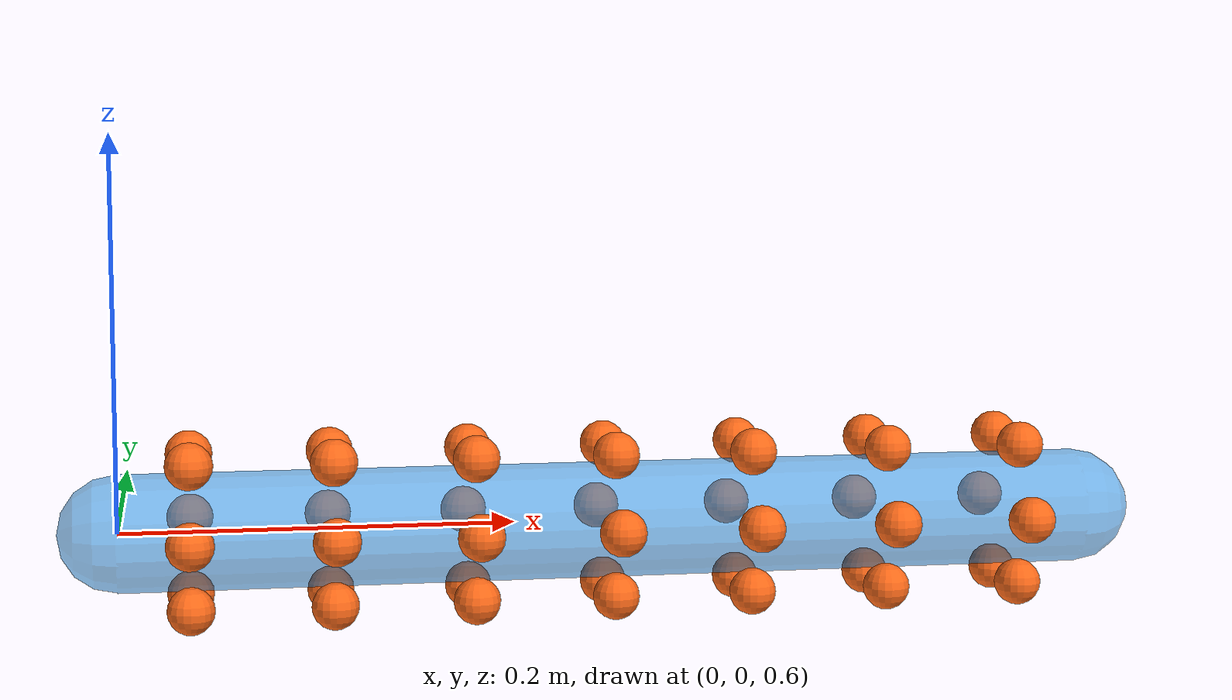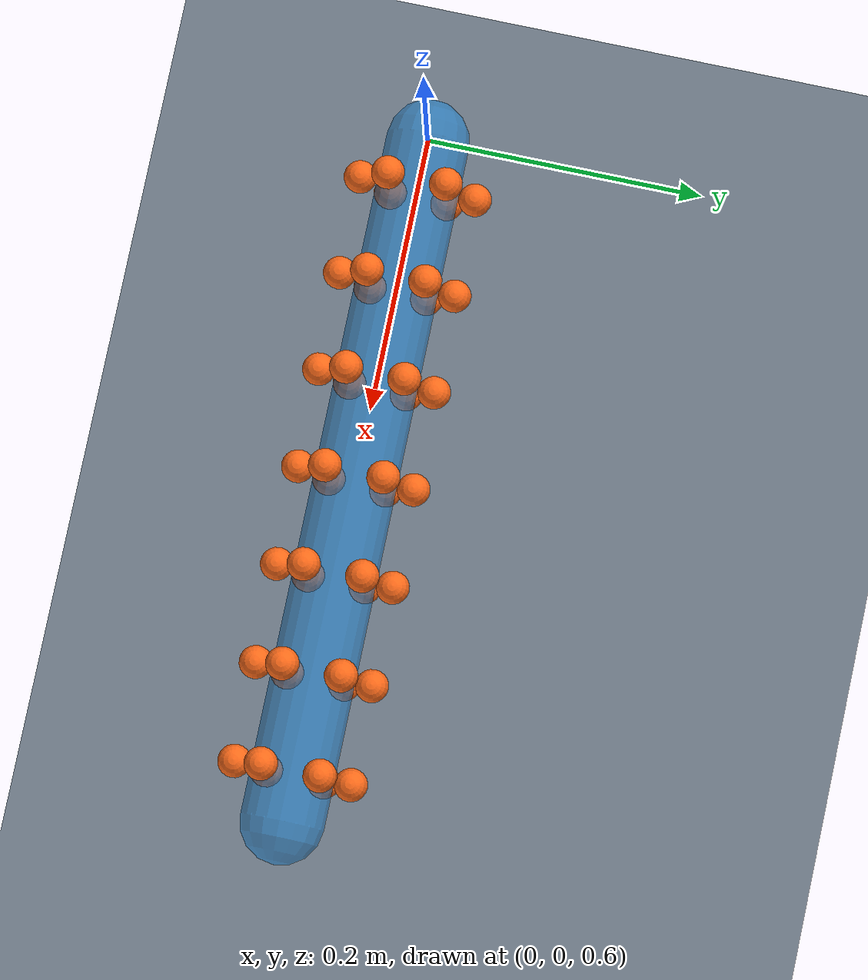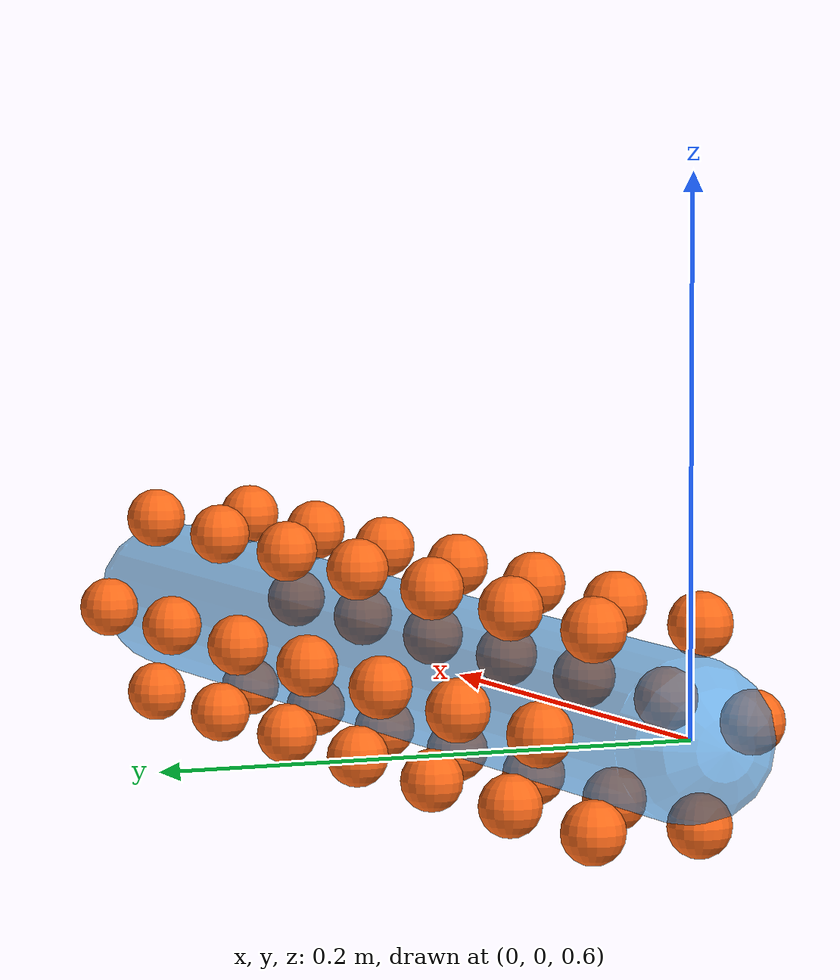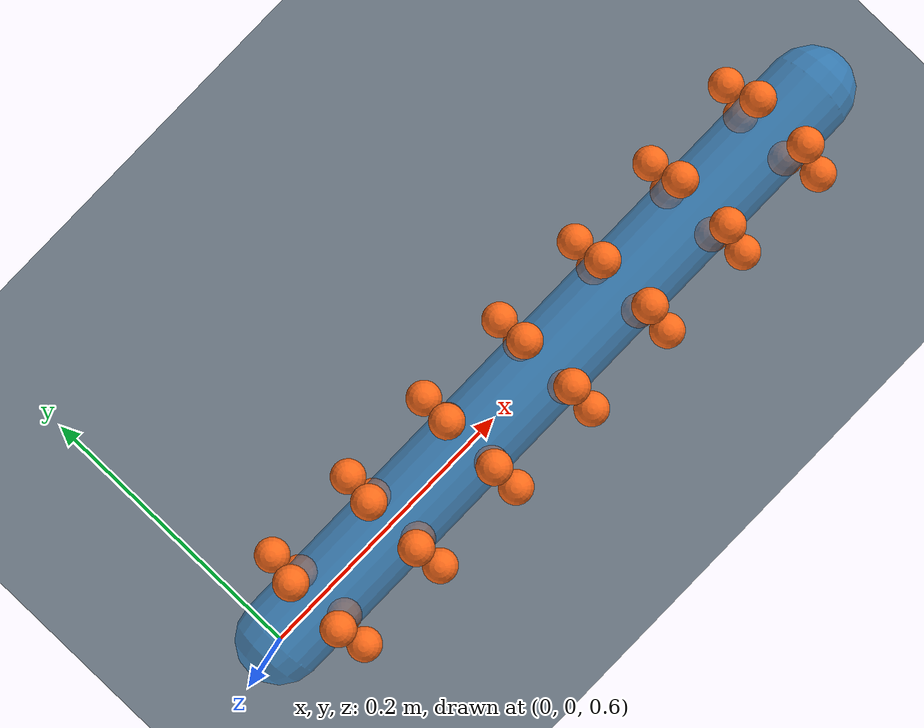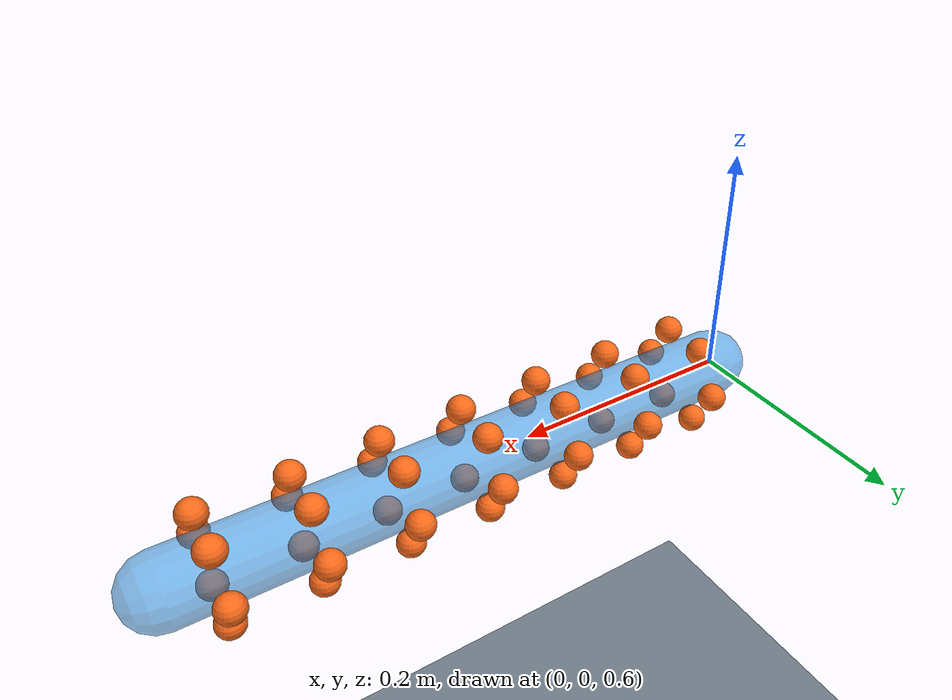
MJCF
<?xml version="1.0" encoding="UTF-8"?>
<mujoco model="beam_soft_mvp">
  <option timestep="0.004" gravity="0 0 -9.81"/>
  <visual><global elevation="-15" azimuth="130" offwidth="720" offheight="720"/></visual>
  <worldbody>
    <geom name="floor" type="plane" size="2 2 0.1" pos="0 0 0" rgba="0.45 0.50 0.55 1" friction="0.8"/>
    <body name="beam" pos="0 0 0.6">
      <freejoint/>
      <geom name="core" type="capsule" fromto="0 0 0 0.5 0 0" size="0.03" rgba="0.10 0.55 0.90 0.55" />
      <geom name="cloud_00" type="sphere" pos="0.0357143 0.042 0" size="0.012" rgba="1.00 0.42 0.10 0.9" friction="0.3" condim="1"/>
      <geom name="cloud_01" type="sphere" pos="0.0357143 0.021 0.0363731" size="0.012" rgba="1.00 0.42 0.10 0.9" friction="0.3" condim="1"/>
      <geom name="cloud_02" type="sphere" pos="0.0357143 -0.021 0.0363731" size="0.012" rgba="1.00 0.42 0.10 0.9" friction="0.3" condim="1"/>
      <geom name="cloud_03" type="sphere" pos="0.0357143 -0.042 5.14352e-18" size="0.012" rgba="1.00 0.42 0.10 0.9" friction="0.3" condim="1"/>
      <geom name="cloud_04" type="sphere" pos="0.0357143 -0.021 -0.0363731" size="0.012" rgba="1.00 0.42 0.10 0.9" friction="0.3" condim="1"/>
      <geom name="cloud_05" type="sphere" pos="0.0357143 0.021 -0.0363731" size="0.012" rgba="1.00 0.42 0.10 0.9" friction="0.3" condim="1"/>
      <geom name="cloud_06" type="sphere" pos="0.107143 0.042 0" size="0.012" rgba="1.00 0.42 0.10 0.9" friction="0.3" condim="1"/>
      <geom name="cloud_07" type="sphere" pos="0.107143 0.021 0.0363731" size="0.012" rgba="1.00 0.42 0.10 0.9" friction="0.3" condim="1"/>
      <geom name="cloud_08" type="sphere" pos="0.107143 -0.021 0.0363731" size="0.012" rgba="1.00 0.42 0.10 0.9" friction="0.3" condim="1"/>
      <geom name="cloud_09" type="sphere" pos="0.107143 -0.042 5.14352e-18" size="0.012" rgba="1.00 0.42 0.10 0.9" friction="0.3" condim="1"/>
      <geom name="cloud_10" type="sphere" pos="0.107143 -0.021 -0.0363731" size="0.012" rgba="1.00 0.42 0.10 0.9" friction="0.3" condim="1"/>
      <geom name="cloud_11" type="sphere" pos="0.107143 0.021 -0.0363731" size="0.012" rgba="1.00 0.42 0.10 0.9" friction="0.3" condim="1"/>
      <geom name="cloud_12" type="sphere" pos="0.178571 0.042 0" size="0.012" rgba="1.00 0.42 0.10 0.9" friction="0.3" condim="1"/>
      <geom name="cloud_13" type="sphere" pos="0.178571 0.021 0.0363731" size="0.012" rgba="1.00 0.42 0.10 0.9" friction="0.3" condim="1"/>
      <geom name="cloud_14" type="sphere" pos="0.178571 -0.021 0.0363731" size="0.012" rgba="1.00 0.42 0.10 0.9" friction="0.3" condim="1"/>
      <geom name="cloud_15" type="sphere" pos="0.178571 -0.042 5.14352e-18" size="0.012" rgba="1.00 0.42 0.10 0.9" friction="0.3" condim="1"/>
      <geom name="cloud_16" type="sphere" pos="0.178571 -0.021 -0.0363731" size="0.012" rgba="1.00 0.42 0.10 0.9" friction="0.3" condim="1"/>
      <geom name="cloud_17" type="sphere" pos="0.178571 0.021 -0.0363731" size="0.012" rgba="1.00 0.42 0.10 0.9" friction="0.3" condim="1"/>
      <geom name="cloud_18" type="sphere" pos="0.25 0.042 0" size="0.012" rgba="1.00 0.42 0.10 0.9" friction="0.3" condim="1"/>
      <geom name="cloud_19" type="sphere" pos="0.25 0.021 0.0363731" size="0.012" rgba="1.00 0.42 0.10 0.9" friction="0.3" condim="1"/>
      <geom name="cloud_20" type="sphere" pos="0.25 -0.021 0.0363731" size="0.012" rgba="1.00 0.42 0.10 0.9" friction="0.3" condim="1"/>
      <geom name="cloud_21" type="sphere" pos="0.25 -0.042 5.14352e-18" size="0.012" rgba="1.00 0.42 0.10 0.9" friction="0.3" condim="1"/>
      <geom name="cloud_22" type="sphere" pos="0.25 -0.021 -0.0363731" size="0.012" rgba="1.00 0.42 0.10 0.9" friction="0.3" condim="1"/>
      <geom name="cloud_23" type="sphere" pos="0.25 0.021 -0.0363731" size="0.012" rgba="1.00 0.42 0.10 0.9" friction="0.3" condim="1"/>
      <geom name="cloud_24" type="sphere" pos="0.321429 0.042 0" size="0.012" rgba="1.00 0.42 0.10 0.9" friction="0.3" condim="1"/>
      <geom name="cloud_25" type="sphere" pos="0.321429 0.021 0.0363731" size="0.012" rgba="1.00 0.42 0.10 0.9" friction="0.3" condim="1"/>
      <geom name="cloud_26" type="sphere" pos="0.321429 -0.021 0.0363731" size="0.012" rgba="1.00 0.42 0.10 0.9" friction="0.3" condim="1"/>
      <geom name="cloud_27" type="sphere" pos="0.321429 -0.042 5.14352e-18" size="0.012" rgba="1.00 0.42 0.10 0.9" friction="0.3" condim="1"/>
      <geom name="cloud_28" type="sphere" pos="0.321429 -0.021 -0.0363731" size="0.012" rgba="1.00 0.42 0.10 0.9" friction="0.3" condim="1"/>
      <geom name="cloud_29" type="sphere" pos="0.321429 0.021 -0.0363731" size="0.012" rgba="1.00 0.42 0.10 0.9" friction="0.3" condim="1"/>
      <geom name="cloud_30" type="sphere" pos="0.392857 0.042 0" size="0.012" rgba="1.00 0.42 0.10 0.9" friction="0.3" condim="1"/>
      <geom name="cloud_31" type="sphere" pos="0.392857 0.021 0.0363731" size="0.012" rgba="1.00 0.42 0.10 0.9" friction="0.3" condim="1"/>
      <geom name="cloud_32" type="sphere" pos="0.392857 -0.021 0.0363731" size="0.012" rgba="1.00 0.42 0.10 0.9" friction="0.3" condim="1"/>
      <geom name="cloud_33" type="sphere" pos="0.392857 -0.042 5.14352e-18" size="0.012" rgba="1.00 0.42 0.10 0.9" friction="0.3" condim="1"/>
      <geom name="cloud_34" type="sphere" pos="0.392857 -0.021 -0.0363731" size="0.012" rgba="1.00 0.42 0.10 0.9" friction="0.3" condim="1"/>
      <geom name="cloud_35" type="sphere" pos="0.392857 0.021 -0.0363731" size="0.012" rgba="1.00 0.42 0.10 0.9" friction="0.3" condim="1"/>
      <geom name="cloud_36" type="sphere" pos="0.464286 0.042 0" size="0.012" rgba="1.00 0.42 0.10 0.9" friction="0.3" condim="1"/>
      <geom name="cloud_37" type="sphere" pos="0.464286 0.021 0.0363731" size="0.012" rgba="1.00 0.42 0.10 0.9" friction="0.3" condim="1"/>
      <geom name="cloud_38" type="sphere" pos="0.464286 -0.021 0.0363731" size="0.012" rgba="1.00 0.42 0.10 0.9" friction="0.3" condim="1"/>
      <geom name="cloud_39" type="sphere" pos="0.464286 -0.042 5.14352e-18" size="0.012" rgba="1.00 0.42 0.10 0.9" friction="0.3" condim="1"/>
      <geom name="cloud_40" type="sphere" pos="0.464286 -0.021 -0.0363731" size="0.012" rgba="1.00 0.42 0.10 0.9" friction="0.3" condim="1"/>
      <geom name="cloud_41" type="sphere" pos="0.464286 0.021 -0.0363731" size="0.012" rgba="1.00 0.42 0.10 0.9" friction="0.3" condim="1"/>
    </body>
    <camera name="main" pos="0.6 -0.7 0.8" xyaxes="0.9 0.5 0 -0.3 0.15 1"/>
  </worldbody>
</mujoco>
